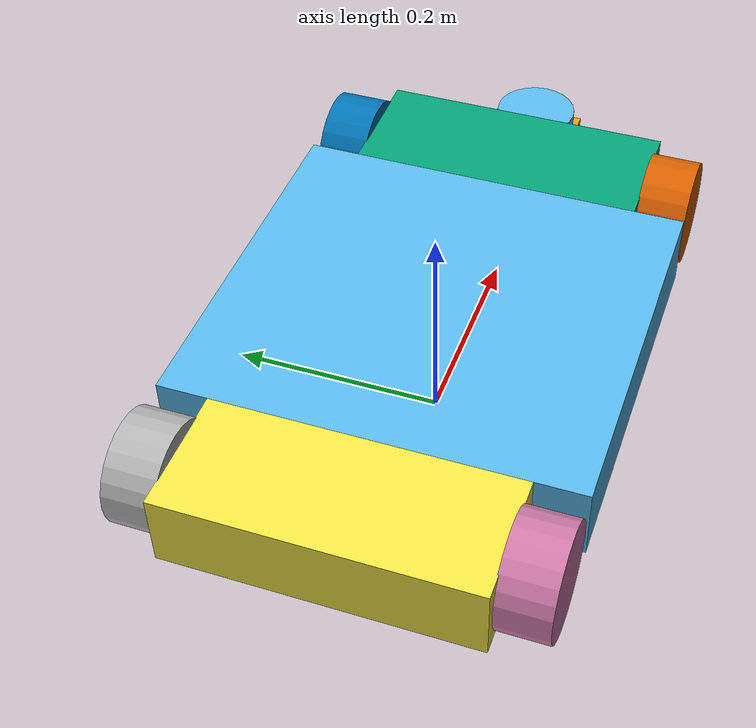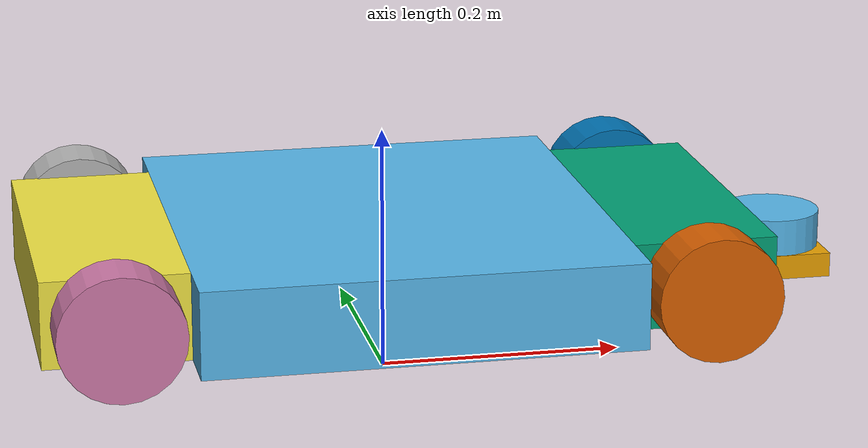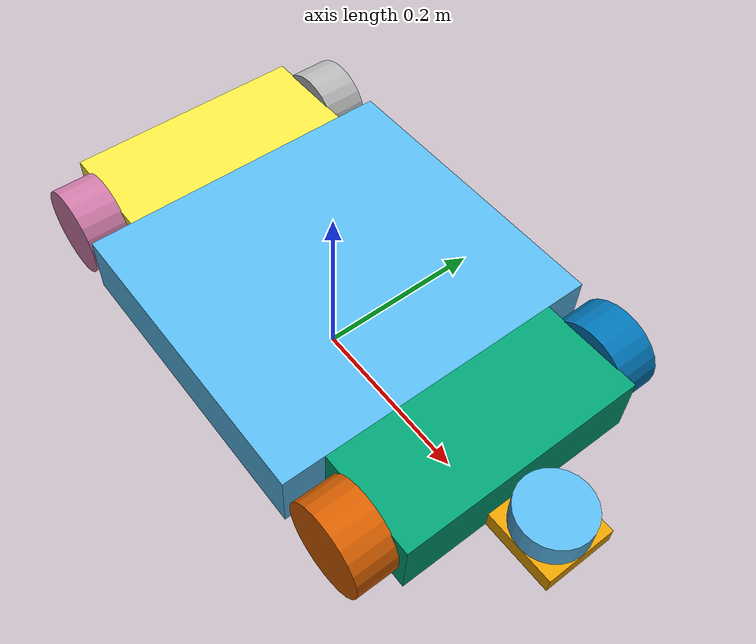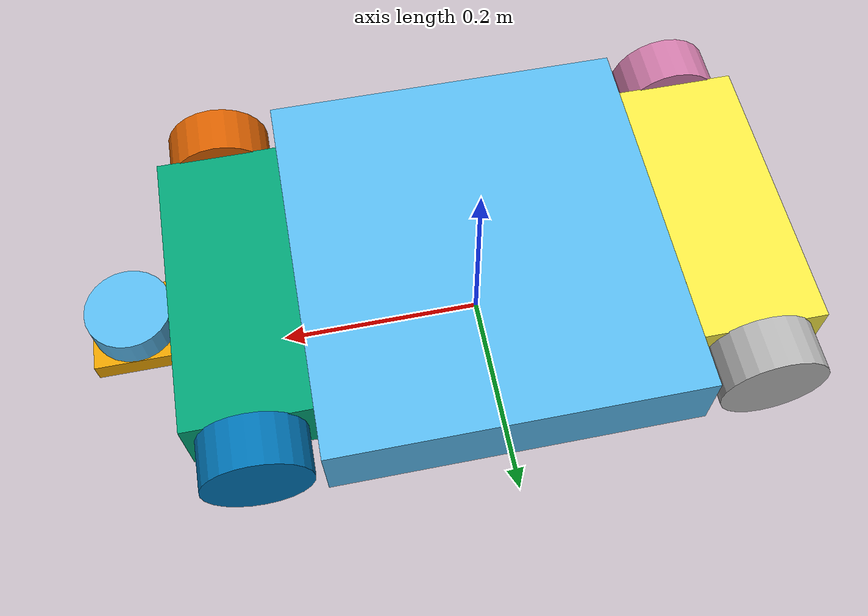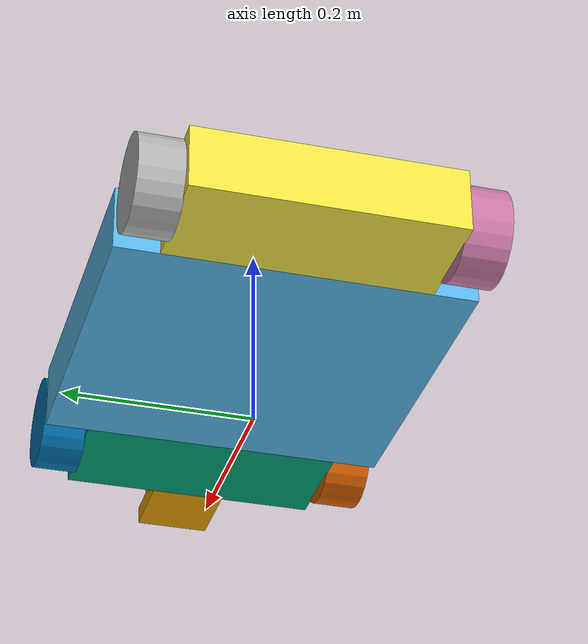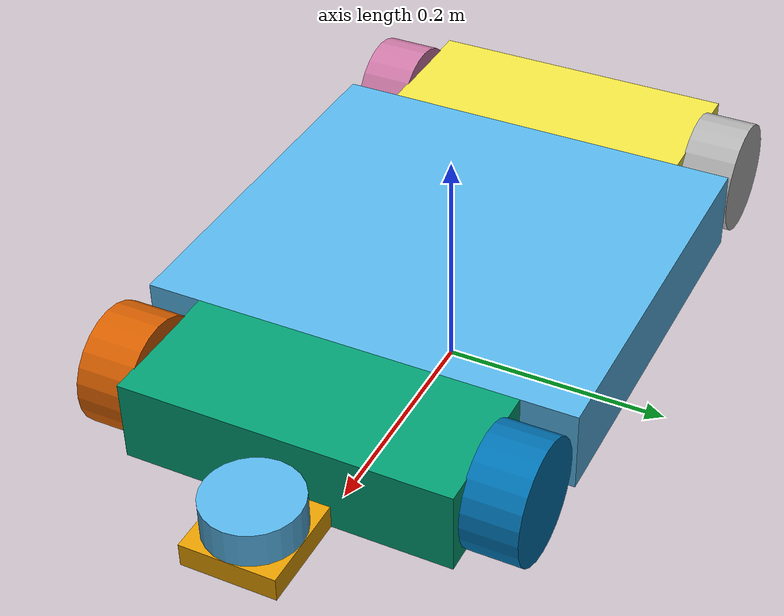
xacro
<?xml version="1.0"?>
<robot name="mobilerobot" xmlns:xacro="http://www.ros.org/wiki/xacro">

<!-- Constants for Robot Dimension -->
<xacro:property name="PI" value="3.1415926535897931"/>
<xacro:property name="robot_z" value="0.07"/>
<xacro:property name="main_x" value="0.34888"/>
<xacro:property name="main_y" value="0.3736"/>
<xacro:property name="main_mass" value="8"/>
<xacro:property name="front_x" value="0.11556"/>
<xacro:property name="front_y" value="0.27932"/>
<xacro:property name="front_mass" value="2"/>
<xacro:property name="rear_x" value="0.11556"/>
<xacro:property name="rear_y" value="0.27932"/>
<xacro:property name="rear_mass" value="2"/>
<xacro:property name="wheel_mass" value="0.5"/>
<xacro:property name="wheel_radius" value="0.05"/>
<xacro:property name="wheel_length" value="0.04714"/>
<xacro:property name="sensor_mount_x" value="0.08"/>
<xacro:property name="sensor_mount_y" value="0.08"/>
<xacro:property name="sensor_mount_z" value="0.02"/>
<xacro:property name="sensor_mount_mass" value="0.100"/>
<xacro:property name="sensor_mass" value="0.3"/>
<xacro:property name="sensor_radius" value="0.04"/>
<xacro:property name="sensor_length" value="0.03"/>

<!-- Used for fixing robot to Gazebo 'main_chassis' -->
  <link name="base_link"/>

  <joint name="fixed" type="fixed">
    <origin xyz="0 0 0" rpy="0 0 0"/>
    <parent link="base_link"/>
    <child link="main_chassis"/>
</joint>

<!-- Main Chassis Link -->
  <link name="main_chassis">
    <collision>
      <origin xyz="0 0 0.1" rpy="0 0 0"/>
      <geometry>
	<box size="${main_x} ${main_y} ${robot_z}"/>
      </geometry>
    </collision>

    <visual>
      <origin xyz="0 0 0.1" rpy="0 0 0"/>
      <geometry>
	<box size="${main_x} ${main_y} ${robot_z}"/>
      </geometry>
    </visual>

    <inertial>
      <origin xyz="0 0 0.1" rpy="0 0 0"/>
      <mass value="${main_mass}"/>
      <inertia
	  ixx="${main_mass / 12.0 * (main_y*main_y + robot_z*robot_z)}" ixy="0.0" ixz="0.0"
	  iyy="${main_mass / 12.0 * (robot_z*robot_z + main_x*main_x)}" iyz="0.0"
	  izz="${main_mass / 12.0 * (main_x*main_x + main_y*main_y)}"/>
    </inertial>
  </link>

  <joint name="main_front_joint" type="fixed">
    <origin xyz="0.23222 0 0" rpy="0 0 0"/>
    <parent link="main_chassis"/>
    <child link="front_chassis"/>
  </joint>

  <joint name="main_rear_joint" type="fixed">
    <origin xyz="-0.23222 0 0" rpy="0 0 0"/>
    <parent link="main_chassis"/>
    <child link="rear_chassis"/>
  </joint>
<!-- Main Chassis Link -->

<!-- Front Chassis Link -->
  <link name="front_chassis">
    <collision>
      <origin xyz="0 0 0.1" rpy="0 0 0"/>
      <geometry>
	<box size="${front_x} ${front_y} ${robot_z}"/>
      </geometry>
    </collision>

    <visual>
      <origin xyz="0 0 0.1" rpy="0 0 0"/>
      <geometry>
	<box size="${front_x} ${front_y} ${robot_z}"/>
      </geometry>
    </visual>

    <inertial>
      <origin xyz="0 0 0.1" rpy="0 0 0"/>
      <mass value="${front_mass}"/>
      <inertia
	  ixx="${front_mass / 12.0 * (front_y*front_y + robot_z*robot_z)}" ixy="0.0" ixz="0.0"
	  iyy="${front_mass / 12.0 * (robot_z*robot_z + front_x*front_x)}" iyz="0.0"
	  izz="${front_mass / 12.0 * (front_x*front_x + front_y*front_y)}"/>
    </inertial>
  </link>

  <joint name="FLW_joint" type="fixed">
      <parent link="front_chassis"/>
      <child link="FLW"/>
      <origin xyz="0 0.16232 0" rpy="0 0 0" />
  </joint>

  <joint name="FRW_joint" type="fixed">
      <parent link="front_chassis"/>
      <child link="FRW"/>
      <origin xyz="0 -0.16232 0" rpy="0 0 0" />
  </joint>

  <joint name="sensor_mount_joint" type="fixed">
      <parent link="front_chassis"/>
      <child link="sensor_mount"/>
      <origin xyz="0.09778 0 -0.025" rpy="0 0 0" />
  </joint>
<!-- Front Chassis Link -->

<!-- Rear Chassis Link -->
  <link name="rear_chassis">
    <collision>
      <origin xyz="0 0 0.1" rpy="0 0 0"/>
      <geometry>
	<box size="${rear_x} ${rear_y} ${robot_z}"/>
      </geometry>
    </collision>

    <visual>
      <origin xyz="0 0 0.1" rpy="0 0 0"/>
      <geometry>
	<box size="${rear_x} ${rear_y} ${robot_z}"/>
      </geometry>
    </visual>

    <inertial>
      <origin xyz="0 0 0.1" rpy="0 0 0"/>
      <mass value="${rear_mass}"/>
      <inertia
	  ixx="${rear_mass / 12.0 * (rear_y*rear_y + robot_z*robot_z)}" ixy="0.0" ixz="0.0"
	  iyy="${rear_mass / 12.0 * (robot_z*robot_z + rear_x*rear_x)}" iyz="0.0"
	  izz="${rear_mass / 12.0 * (rear_x*rear_x + rear_y*rear_y)}"/>
    </inertial>
  </link>

  <joint name="RLW_joint" type="fixed">
      <parent link="rear_chassis"/>
      <child link="RLW"/>
      <origin xyz="0 0.16232 0" rpy="0 0 0" />
  </joint>

  <joint name="RRW_joint" type="fixed">
      <parent link="rear_chassis"/>
      <child link="RRW"/>
      <origin xyz="0 -0.16232 0" rpy="0 0 0" />
  </joint>
<!-- Rear Chassis Link -->

<!--  FLW Link -->
  <link name="FLW">
    <collision>
      <origin xyz="0 0 0.1" rpy="${PI/2} 0 0"/>
      <geometry>
	<cylinder length="${wheel_length}" radius="${wheel_radius}"/>
      </geometry>
    </collision>

    <visual>
      <origin xyz="0 0 0.1" rpy="${PI/2} 0 0"/>
      <geometry>
	<cylinder length="${wheel_length}" radius="${wheel_radius}"/>
      </geometry>
    </visual>

    <inertial>
      <origin xyz="0 0 0.1" rpy="0 0 0"/>
      <mass value="${wheel_mass}"/>
      <inertia
	  ixx="${wheel_mass / 12.0 * (3*wheel_radius*wheel_radius + wheel_length*wheel_length)}" ixy="0.0" ixz="0.0"
	  iyy="${wheel_mass / 12.0 * (wheel_length*wheel_length + 3*wheel_radius*wheel_radius)}" iyz="0.0"
	  izz="${wheel_mass*wheel_radius*wheel_radius/2}"/>
    </inertial>
  </link>
<!-- FLW Link -->

<!--  FRW Link -->
  <link name="FRW">
    <collision>
      <origin xyz="0 0 0.1" rpy="${PI/2} 0 0"/>
      <geometry>
	<cylinder length="${wheel_length}" radius="${wheel_radius}"/>
      </geometry>
    </collision>

    <visual>
      <origin xyz="0 0 0.1" rpy="${PI/2} 0 0"/>
      <geometry>
	<cylinder length="${wheel_length}" radius="${wheel_radius}"/>
      </geometry>
    </visual>

    <inertial>
      <origin xyz="0 0 0.1" rpy="0 0 0"/>
      <mass value="${wheel_mass}"/>
      <inertia
	  ixx="${wheel_mass / 12.0 * (3*wheel_radius*wheel_radius + wheel_length*wheel_length)}" ixy="0.0" ixz="0.0"
	  iyy="${wheel_mass / 12.0 * (wheel_length*wheel_length + 3*wheel_radius*wheel_radius)}" iyz="0.0"
	  izz="${wheel_mass*wheel_radius*wheel_radius/2}"/>
    </inertial>
  </link>
<!-- FRW Link -->

<!--  RRW Link -->
  <link name="RRW">
    <collision>
      <origin xyz="0 0 0.1" rpy="${PI/2} 0 0"/>
      <geometry>
	<cylinder length="${wheel_length}" radius="${wheel_radius}"/>
      </geometry>
    </collision>

    <visual>
      <origin xyz="0 0 0.1" rpy="${PI/2} 0 0"/>
      <geometry>
	<cylinder length="${wheel_length}" radius="${wheel_radius}"/>
      </geometry>
    </visual>

    <inertial>
      <origin xyz="0 0 0.1" rpy="0 0 0"/>
      <mass value="${wheel_mass}"/>
      <inertia
	  ixx="${wheel_mass / 12.0 * (3*wheel_radius*wheel_radius + wheel_length*wheel_length)}" ixy="0.0" ixz="0.0"
	  iyy="${wheel_mass / 12.0 * (wheel_length*wheel_length + 3*wheel_radius*wheel_radius)}" iyz="0.0"
	  izz="${wheel_mass*wheel_radius*wheel_radius/2}"/>
    </inertial>
  </link>
<!-- RRW Link -->

<!--  RLW Link -->
  <link name="RLW">
    <collision>
      <origin xyz="0 0 0.1" rpy="${PI/2} 0 0"/>
      <geometry>
	<cylinder length="${wheel_length}" radius="${wheel_radius}"/>
      </geometry>
    </collision>

    <visual>
      <origin xyz="0 0 0.1" rpy="${PI/2} 0 0"/>
      <geometry>
	<cylinder length="${wheel_length}" radius="${wheel_radius}"/>
      </geometry>
    </visual>

    <inertial>
      <origin xyz="0 0 0.1" rpy="0 0 0"/>
      <mass value="${wheel_mass}"/>
      <inertia
	  ixx="${wheel_mass / 12.0 * (3*wheel_radius*wheel_radius + wheel_length*wheel_length)}" ixy="0.0" ixz="0.0"
	  iyy="${wheel_mass / 12.0 * (wheel_length*wheel_length + 3*wheel_radius*wheel_radius)}" iyz="0.0"
	  izz="${wheel_mass*wheel_radius*wheel_radius/2}"/>
    </inertial>
  </link>
<!-- RLW Link -->

<!-- Sensor Mount -->
<link name="sensor_mount">
    <collision>
      <origin xyz="0 0 0.1" rpy="0 0 0"/>
      <geometry>
	<box size="${sensor_mount_x} ${sensor_mount_y} ${sensor_mount_z}"/>
      </geometry>
    </collision>

    <visual>
      <origin xyz="0 0 0.1" rpy="0 0 0"/>
      <geometry>
	<box size="${sensor_mount_x} ${sensor_mount_y} ${sensor_mount_z}"/>
      </geometry>
    </visual>

    <inertial>
      <origin xyz="0 0 0.1" rpy="0 0 0"/>
      <mass value="${sensor_mount_mass}"/>
      <inertia
	  ixx="${sensor_mount_mass / 12.0 * (sensor_mount_y*sensor_mount_y + sensor_mount_z*sensor_mount_z)}" ixy="0.0" ixz="0.0"
	  iyy="${sensor_mount_mass / 12.0 * (sensor_mount_z*sensor_mount_z + sensor_mount_x*sensor_mount_x)}" iyz="0.0"
	  izz="${sensor_mount_mass / 12.0 * (sensor_mount_x*sensor_mount_x + sensor_mount_y*sensor_mount_y)}"/>
    </inertial>
  </link>

  <joint name="sensor_joint" type="fixed">
      <parent link="sensor_mount"/>
      <child link="laser"/>
      <origin xyz="0 0 0.025" rpy="0 0 0" />
  </joint>
<!-- Sensor Mount -->

<!-- Sensor -->
  <link name="laser">
    <collision>
      <origin xyz="0 0 0.1" rpy="0 0 0"/>
      <geometry>
	<cylinder length="${sensor_length}" radius="${sensor_radius}"/>
      </geometry>
    </collision>

    <visual>
      <origin xyz="0 0 0.1" rpy="0 0 0"/>
      <geometry>
	<cylinder length="${sensor_length}" radius="${sensor_radius}"/>
      </geometry>
    </visual>

    <inertial>
      <origin xyz="0 0 0.1" rpy="0 0 0"/>
      <mass value="${sensor_mass}"/>
      <inertia
	  ixx="${sensor_mass / 12.0 * (3*sensor_radius*sensor_radius + sensor_length*sensor_length)}" ixy="0.0" ixz="0.0"
	  iyy="${sensor_mass / 12.0 * (sensor_length*sensor_length + 3*sensor_radius*sensor_radius)}" iyz="0.0"
	  izz="${sensor_mass*sensor_radius*sensor_radius/2}"/>
    </inertial>
  </link>
<!-- Sensor -->

<!-- Plugins Gazebo Ros -->
<!-- Laser Scanner -->
<!-- Laser Scanner -->
<!-- Planar Movement -->
<gazebo>
    <plugin name="object_controller" filename="libgazebo_ros_planar_move.so">
      <commandTopic>cmd_vel</commandTopic>
      <odometryTopic>odom</odometryTopic>
      <odometryFrame>odom</odometryFrame>
      <odometryRate>20.0</odometryRate>
      <robotBaseFrame>main_chassis</robotBaseFrame>
    </plugin>
</gazebo>
<!-- Planar Movement -->

</robot>
